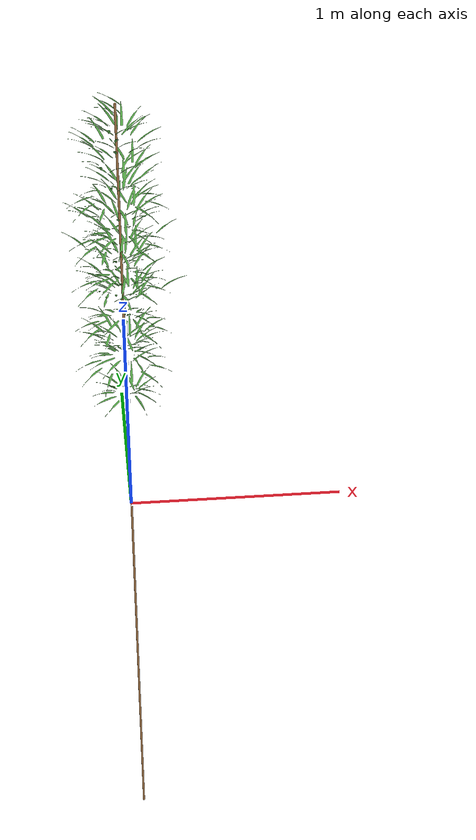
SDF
<?xml version="1.0" ?>
<sdf version="1.5">
  <model name="tree">
    <static>true</static>
    <link name="link">
      <pose frame=''>0 0 0 0 -0 0</pose>
      <collision name="collision">
        <geometry>
          <mesh>
            <uri>model://urdf/cad/bamboo_leaves.dae</uri>
            <scale>1 1 1</scale>
          </mesh>
        </geometry>
        <surface>
          <friction>
            <ode>
              <mu>100</mu>
              <mu2>50</mu2>
            </ode>
          </friction>
        </surface>
      </collision>
      <visual name="visual">
        <cast_shadows>false</cast_shadows>
        <geometry>
          <mesh>
            <uri>model://urdf/cad/bamboo_leaves.dae</uri>
            <scale>1 1 1</scale>
          </mesh>
        </geometry>
        <material>
          <script>
            <uri>model://urdf/gazebo.material</uri>
            <name>Gazebo/Grass_image</name>
          </script>
        </material>
      </visual>
    </link>
    <link name="stem">
      <collision name="collision">
        <geometry>
          <cylinder>
            <radius>0.05</radius>
            <length>1.2</length>
          </cylinder>
        </geometry>
        <surface>
          <friction>
            <ode>
              <mu>100</mu>
              <mu2>50</mu2>
            </ode>
          </friction>
        </surface>
      </collision>
      <visual name="visual">
        <cast_shadows>false</cast_shadows>
        <geometry>
          <cylinder>
            <radius>0.005</radius>
            <length>4.0</length>
          </cylinder>
        </geometry>
        <material>
          <script>
            <uri>file://media/materials/scripts/gazebo.material</uri>
            <name>Gazebo/Wood</name>
          </script>
        </material>
      </visual>
    </link>
  </model>
</sdf>
